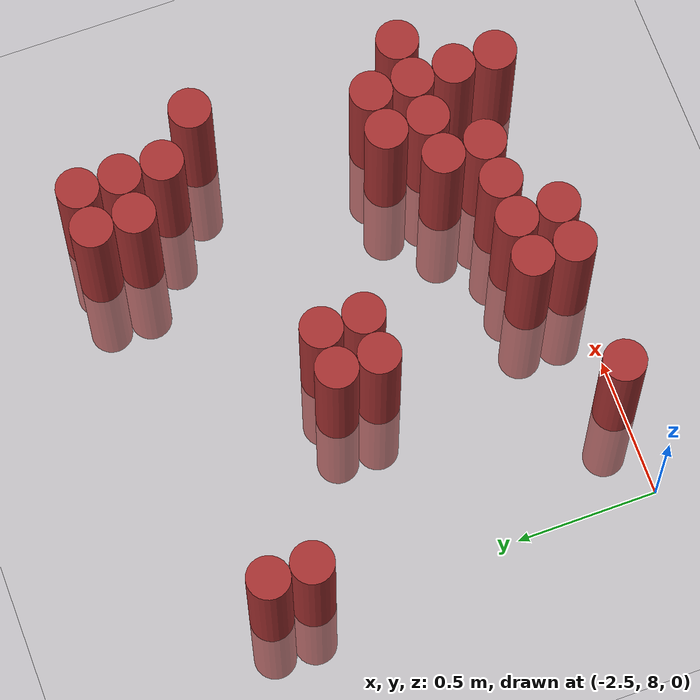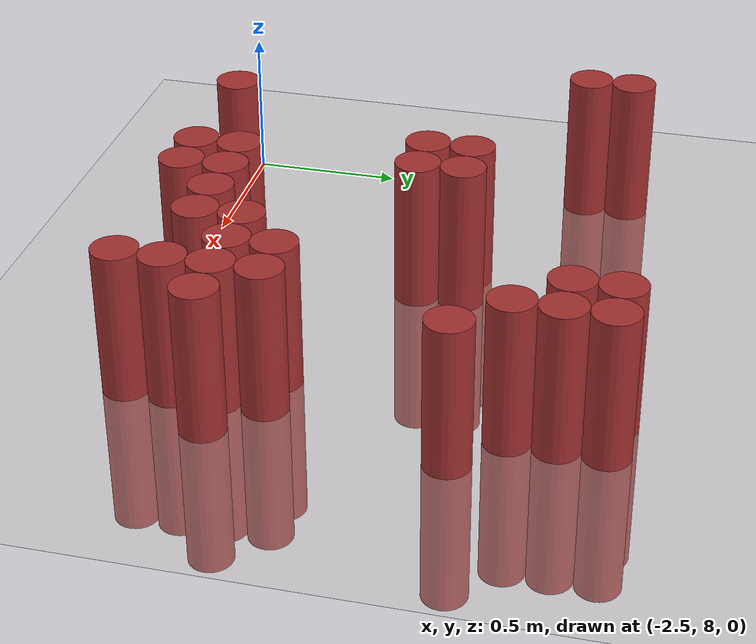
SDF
<sdf version="1.6">
 <world name="default">
  <model name="ground_plane">
   <static>1</static>
   <link name="link">
    <collision name="collision">
     <geometry><plane><normal>0 0 1</normal><size>100 100</size></plane></geometry>
     <surface><friction><ode><mu>100</mu><mu2>50</mu2></ode></friction></surface>
    </collision>
    <visual name="visual">
     <cast_shadows>0</cast_shadows>
     <geometry><plane><normal>0 0 1</normal><size>100 100</size></plane></geometry>
     <material>
      <script><uri>file://media/materials/scripts/gazebo.material</uri><name>Gazebo/Grey</name></script>
     </material>
    </visual>
   </link>
  </model>
  <model name="unit_cylinder_176">
   <static>1</static>
   <pose>-2.475000 9.225000 0.000000 0.000000 0.000000 0.000000</pose>
   <link name="link">
    <inertial>
     <mass>1</mass>
     <inertia><ixx>0.145833</ixx><ixy>0</ixy><ixz>0</ixz><iyy>0.145833</iyy><iyz>0</iyz><izz>0.125</izz></inertia>
    </inertial>
    <collision name="collision">
     <geometry><cylinder><radius>0.075000</radius><length>1</length></cylinder></geometry>
    </collision>
    <visual name="visual">
     <geometry><cylinder><radius>0.075000</radius><length>1</length></cylinder></geometry>
     <material>
      <ambient>0.648000 0.192000 0.192000 1</ambient>
      <diffuse>0.648000 0.192000 0.192000 1</diffuse>
     </material>
     <material>
      <script><name>Gazebo/Grey</name><uri>file://media/materials/scripts/gazebo.material</uri></script>
     </material>
    </visual>
   </link>
  </model>
  <model name="unit_cylinder_177">
   <static>1</static>
   <pose>-2.475000 9.375000 0.000000 0.000000 0.000000 0.000000</pose>
   <link name="link">
    <inertial>
     <mass>1</mass>
     <inertia><ixx>0.145833</ixx><ixy>0</ixy><ixz>0</ixz><iyy>0.145833</iyy><iyz>0</iyz><izz>0.125</izz></inertia>
    </inertial>
    <collision name="collision">
     <geometry><cylinder><radius>0.075000</radius><length>1</length></cylinder></geometry>
    </collision>
    <visual name="visual">
     <geometry><cylinder><radius>0.075000</radius><length>1</length></cylinder></geometry>
     <material>
      <ambient>0.648000 0.192000 0.192000 1</ambient>
      <diffuse>0.648000 0.192000 0.192000 1</diffuse>
     </material>
     <material>
      <script><name>Gazebo/Grey</name><uri>file://media/materials/scripts/gazebo.material</uri></script>
     </material>
    </visual>
   </link>
  </model>
  <model name="unit_cylinder_188">
   <static>1</static>
   <pose>-2.175000 8.025000 0.000000 0.000000 0.000000 0.000000</pose>
   <link name="link">
    <inertial>
     <mass>1</mass>
     <inertia><ixx>0.145833</ixx><ixy>0</ixy><ixz>0</ixz><iyy>0.145833</iyy><iyz>0</iyz><izz>0.125</izz></inertia>
    </inertial>
    <collision name="collision">
     <geometry><cylinder><radius>0.075000</radius><length>1</length></cylinder></geometry>
    </collision>
    <visual name="visual">
     <geometry><cylinder><radius>0.075000</radius><length>1</length></cylinder></geometry>
     <material>
      <ambient>0.648000 0.192000 0.192000 1</ambient>
      <diffuse>0.648000 0.192000 0.192000 1</diffuse>
     </material>
     <material>
      <script><name>Gazebo/Grey</name><uri>file://media/materials/scripts/gazebo.material</uri></script>
     </material>
    </visual>
   </link>
  </model>
  <model name="unit_cylinder_198">
   <static>1</static>
   <pose>-1.875000 8.775000 0.000000 0.000000 0.000000 0.000000</pose>
   <link name="link">
    <inertial>
     <mass>1</mass>
     <inertia><ixx>0.145833</ixx><ixy>0</ixy><ixz>0</ixz><iyy>0.145833</iyy><iyz>0</iyz><izz>0.125</izz></inertia>
    </inertial>
    <collision name="collision">
     <geometry><cylinder><radius>0.075000</radius><length>1</length></cylinder></geometry>
    </collision>
    <visual name="visual">
     <geometry><cylinder><radius>0.075000</radius><length>1</length></cylinder></geometry>
     <material>
      <ambient>0.648000 0.192000 0.192000 1</ambient>
      <diffuse>0.648000 0.192000 0.192000 1</diffuse>
     </material>
     <material>
      <script><name>Gazebo/Grey</name><uri>file://media/materials/scripts/gazebo.material</uri></script>
     </material>
    </visual>
   </link>
  </model>
  <model name="unit_cylinder_199">
   <static>1</static>
   <pose>-1.875000 8.925000 0.000000 0.000000 0.000000 0.000000</pose>
   <link name="link">
    <inertial>
     <mass>1</mass>
     <inertia><ixx>0.145833</ixx><ixy>0</ixy><ixz>0</ixz><iyy>0.145833</iyy><iyz>0</iyz><izz>0.125</izz></inertia>
    </inertial>
    <collision name="collision">
     <geometry><cylinder><radius>0.075000</radius><length>1</length></cylinder></geometry>
    </collision>
    <visual name="visual">
     <geometry><cylinder><radius>0.075000</radius><length>1</length></cylinder></geometry>
     <material>
      <ambient>0.648000 0.192000 0.192000 1</ambient>
      <diffuse>0.648000 0.192000 0.192000 1</diffuse>
     </material>
     <material>
      <script><name>Gazebo/Grey</name><uri>file://media/materials/scripts/gazebo.material</uri></script>
     </material>
    </visual>
   </link>
  </model>
  <model name="unit_cylinder_208">
   <static>1</static>
   <pose>-1.725000 8.025000 0.000000 0.000000 0.000000 0.000000</pose>
   <link name="link">
    <inertial>
     <mass>1</mass>
     <inertia><ixx>0.145833</ixx><ixy>0</ixy><ixz>0</ixz><iyy>0.145833</iyy><iyz>0</iyz><izz>0.125</izz></inertia>
    </inertial>
    <collision name="collision">
     <geometry><cylinder><radius>0.075000</radius><length>1</length></cylinder></geometry>
    </collision>
    <visual name="visual">
     <geometry><cylinder><radius>0.075000</radius><length>1</length></cylinder></geometry>
     <material>
      <ambient>0.648000 0.192000 0.192000 1</ambient>
      <diffuse>0.648000 0.192000 0.192000 1</diffuse>
     </material>
     <material>
      <script><name>Gazebo/Grey</name><uri>file://media/materials/scripts/gazebo.material</uri></script>
     </material>
    </visual>
   </link>
  </model>
  <model name="unit_cylinder_209">
   <static>1</static>
   <pose>-1.725000 8.175000 0.000000 0.000000 0.000000 0.000000</pose>
   <link name="link">
    <inertial>
     <mass>1</mass>
     <inertia><ixx>0.145833</ixx><ixy>0</ixy><ixz>0</ixz><iyy>0.145833</iyy><iyz>0</iyz><izz>0.125</izz></inertia>
    </inertial>
    <collision name="collision">
     <geometry><cylinder><radius>0.075000</radius><length>1</length></cylinder></geometry>
    </collision>
    <visual name="visual">
     <geometry><cylinder><radius>0.075000</radius><length>1</length></cylinder></geometry>
     <material>
      <ambient>0.648000 0.192000 0.192000 1</ambient>
      <diffuse>0.648000 0.192000 0.192000 1</diffuse>
     </material>
     <material>
      <script><name>Gazebo/Grey</name><uri>file://media/materials/scripts/gazebo.material</uri></script>
     </material>
    </visual>
   </link>
  </model>
  <model name="unit_cylinder_210">
   <static>1</static>
   <pose>-1.725000 8.775000 0.000000 0.000000 0.000000 0.000000</pose>
   <link name="link">
    <inertial>
     <mass>1</mass>
     <inertia><ixx>0.145833</ixx><ixy>0</ixy><ixz>0</ixz><iyy>0.145833</iyy><iyz>0</iyz><izz>0.125</izz></inertia>
    </inertial>
    <collision name="collision">
     <geometry><cylinder><radius>0.075000</radius><length>1</length></cylinder></geometry>
    </collision>
    <visual name="visual">
     <geometry><cylinder><radius>0.075000</radius><length>1</length></cylinder></geometry>
     <material>
      <ambient>0.648000 0.192000 0.192000 1</ambient>
      <diffuse>0.648000 0.192000 0.192000 1</diffuse>
     </material>
     <material>
      <script><name>Gazebo/Grey</name><uri>file://media/materials/scripts/gazebo.material</uri></script>
     </material>
    </visual>
   </link>
  </model>
  <model name="unit_cylinder_211">
   <static>1</static>
   <pose>-1.725000 8.925000 0.000000 0.000000 0.000000 0.000000</pose>
   <link name="link">
    <inertial>
     <mass>1</mass>
     <inertia><ixx>0.145833</ixx><ixy>0</ixy><ixz>0</ixz><iyy>0.145833</iyy><iyz>0</iyz><izz>0.125</izz></inertia>
    </inertial>
    <collision name="collision">
     <geometry><cylinder><radius>0.075000</radius><length>1</length></cylinder></geometry>
    </collision>
    <visual name="visual">
     <geometry><cylinder><radius>0.075000</radius><length>1</length></cylinder></geometry>
     <material>
      <ambient>0.648000 0.192000 0.192000 1</ambient>
      <diffuse>0.648000 0.192000 0.192000 1</diffuse>
     </material>
     <material>
      <script><name>Gazebo/Grey</name><uri>file://media/materials/scripts/gazebo.material</uri></script>
     </material>
    </visual>
   </link>
  </model>
  <model name="unit_cylinder_221">
   <static>1</static>
   <pose>-1.575000 8.025000 0.000000 0.000000 0.000000 0.000000</pose>
   <link name="link">
    <inertial>
     <mass>1</mass>
     <inertia><ixx>0.145833</ixx><ixy>0</ixy><ixz>0</ixz><iyy>0.145833</iyy><iyz>0</iyz><izz>0.125</izz></inertia>
    </inertial>
    <collision name="collision">
     <geometry><cylinder><radius>0.075000</radius><length>1</length></cylinder></geometry>
    </collision>
    <visual name="visual">
     <geometry><cylinder><radius>0.075000</radius><length>1</length></cylinder></geometry>
     <material>
      <ambient>0.648000 0.192000 0.192000 1</ambient>
      <diffuse>0.648000 0.192000 0.192000 1</diffuse>
     </material>
     <material>
      <script><name>Gazebo/Grey</name><uri>file://media/materials/scripts/gazebo.material</uri></script>
     </material>
    </visual>
   </link>
  </model>
  <model name="unit_cylinder_222">
   <static>1</static>
   <pose>-1.575000 8.175000 0.000000 0.000000 0.000000 0.000000</pose>
   <link name="link">
    <inertial>
     <mass>1</mass>
     <inertia><ixx>0.145833</ixx><ixy>0</ixy><ixz>0</ixz><iyy>0.145833</iyy><iyz>0</iyz><izz>0.125</izz></inertia>
    </inertial>
    <collision name="collision">
     <geometry><cylinder><radius>0.075000</radius><length>1</length></cylinder></geometry>
    </collision>
    <visual name="visual">
     <geometry><cylinder><radius>0.075000</radius><length>1</length></cylinder></geometry>
     <material>
      <ambient>0.648000 0.192000 0.192000 1</ambient>
      <diffuse>0.648000 0.192000 0.192000 1</diffuse>
     </material>
     <material>
      <script><name>Gazebo/Grey</name><uri>file://media/materials/scripts/gazebo.material</uri></script>
     </material>
    </visual>
   </link>
  </model>
  <model name="unit_cylinder_227">
   <static>1</static>
   <pose>-1.425000 8.175000 0.000000 0.000000 0.000000 0.000000</pose>
   <link name="link">
    <inertial>
     <mass>1</mass>
     <inertia><ixx>0.145833</ixx><ixy>0</ixy><ixz>0</ixz><iyy>0.145833</iyy><iyz>0</iyz><izz>0.125</izz></inertia>
    </inertial>
    <collision name="collision">
     <geometry><cylinder><radius>0.075000</radius><length>1</length></cylinder></geometry>
    </collision>
    <visual name="visual">
     <geometry><cylinder><radius>0.075000</radius><length>1</length></cylinder></geometry>
     <material>
      <ambient>0.648000 0.192000 0.192000 1</ambient>
      <diffuse>0.648000 0.192000 0.192000 1</diffuse>
     </material>
     <material>
      <script><name>Gazebo/Grey</name><uri>file://media/materials/scripts/gazebo.material</uri></script>
     </material>
    </visual>
   </link>
  </model>
  <model name="unit_cylinder_231">
   <static>1</static>
   <pose>-1.275000 8.175000 0.000000 0.000000 0.000000 0.000000</pose>
   <link name="link">
    <inertial>
     <mass>1</mass>
     <inertia><ixx>0.145833</ixx><ixy>0</ixy><ixz>0</ixz><iyy>0.145833</iyy><iyz>0</iyz><izz>0.125</izz></inertia>
    </inertial>
    <collision name="collision">
     <geometry><cylinder><radius>0.075000</radius><length>1</length></cylinder></geometry>
    </collision>
    <visual name="visual">
     <geometry><cylinder><radius>0.075000</radius><length>1</length></cylinder></geometry>
     <material>
      <ambient>0.648000 0.192000 0.192000 1</ambient>
      <diffuse>0.648000 0.192000 0.192000 1</diffuse>
     </material>
     <material>
      <script><name>Gazebo/Grey</name><uri>file://media/materials/scripts/gazebo.material</uri></script>
     </material>
    </visual>
   </link>
  </model>
  <model name="unit_cylinder_232">
   <static>1</static>
   <pose>-1.275000 8.325000 0.000000 0.000000 0.000000 0.000000</pose>
   <link name="link">
    <inertial>
     <mass>1</mass>
     <inertia><ixx>0.145833</ixx><ixy>0</ixy><ixz>0</ixz><iyy>0.145833</iyy><iyz>0</iyz><izz>0.125</izz></inertia>
    </inertial>
    <collision name="collision">
     <geometry><cylinder><radius>0.075000</radius><length>1</length></cylinder></geometry>
    </collision>
    <visual name="visual">
     <geometry><cylinder><radius>0.075000</radius><length>1</length></cylinder></geometry>
     <material>
      <ambient>0.648000 0.192000 0.192000 1</ambient>
      <diffuse>0.648000 0.192000 0.192000 1</diffuse>
     </material>
     <material>
      <script><name>Gazebo/Grey</name><uri>file://media/materials/scripts/gazebo.material</uri></script>
     </material>
    </visual>
   </link>
  </model>
  <model name="unit_cylinder_238">
   <static>1</static>
   <pose>-1.125000 8.325000 0.000000 0.000000 0.000000 0.000000</pose>
   <link name="link">
    <inertial>
     <mass>1</mass>
     <inertia><ixx>0.145833</ixx><ixy>0</ixy><ixz>0</ixz><iyy>0.145833</iyy><iyz>0</iyz><izz>0.125</izz></inertia>
    </inertial>
    <collision name="collision">
     <geometry><cylinder><radius>0.075000</radius><length>1</length></cylinder></geometry>
    </collision>
    <visual name="visual">
     <geometry><cylinder><radius>0.075000</radius><length>1</length></cylinder></geometry>
     <material>
      <ambient>0.648000 0.192000 0.192000 1</ambient>
      <diffuse>0.648000 0.192000 0.192000 1</diffuse>
     </material>
     <material>
      <script><name>Gazebo/Grey</name><uri>file://media/materials/scripts/gazebo.material</uri></script>
     </material>
    </visual>
   </link>
  </model>
  <model name="unit_cylinder_239">
   <static>1</static>
   <pose>-1.125000 8.475000 0.000000 0.000000 0.000000 0.000000</pose>
   <link name="link">
    <inertial>
     <mass>1</mass>
     <inertia><ixx>0.145833</ixx><ixy>0</ixy><ixz>0</ixz><iyy>0.145833</iyy><iyz>0</iyz><izz>0.125</izz></inertia>
    </inertial>
    <collision name="collision">
     <geometry><cylinder><radius>0.075000</radius><length>1</length></cylinder></geometry>
    </collision>
    <visual name="visual">
     <geometry><cylinder><radius>0.075000</radius><length>1</length></cylinder></geometry>
     <material>
      <ambient>0.648000 0.192000 0.192000 1</ambient>
      <diffuse>0.648000 0.192000 0.192000 1</diffuse>
     </material>
     <material>
      <script><name>Gazebo/Grey</name><uri>file://media/materials/scripts/gazebo.material</uri></script>
     </material>
    </visual>
   </link>
  </model>
  <model name="unit_cylinder_240">
   <static>1</static>
   <pose>-1.125000 9.375000 0.000000 0.000000 0.000000 0.000000</pose>
   <link name="link">
    <inertial>
     <mass>1</mass>
     <inertia><ixx>0.145833</ixx><ixy>0</ixy><ixz>0</ixz><iyy>0.145833</iyy><iyz>0</iyz><izz>0.125</izz></inertia>
    </inertial>
    <collision name="collision">
     <geometry><cylinder><radius>0.075000</radius><length>1</length></cylinder></geometry>
    </collision>
    <visual name="visual">
     <geometry><cylinder><radius>0.075000</radius><length>1</length></cylinder></geometry>
     <material>
      <ambient>0.648000 0.192000 0.192000 1</ambient>
      <diffuse>0.648000 0.192000 0.192000 1</diffuse>
     </material>
     <material>
      <script><name>Gazebo/Grey</name><uri>file://media/materials/scripts/gazebo.material</uri></script>
     </material>
    </visual>
   </link>
  </model>
  <model name="unit_cylinder_241">
   <static>1</static>
   <pose>-1.125000 9.525000 0.000000 0.000000 0.000000 0.000000</pose>
   <link name="link">
    <inertial>
     <mass>1</mass>
     <inertia><ixx>0.145833</ixx><ixy>0</ixy><ixz>0</ixz><iyy>0.145833</iyy><iyz>0</iyz><izz>0.125</izz></inertia>
    </inertial>
    <collision name="collision">
     <geometry><cylinder><radius>0.075000</radius><length>1</length></cylinder></geometry>
    </collision>
    <visual name="visual">
     <geometry><cylinder><radius>0.075000</radius><length>1</length></cylinder></geometry>
     <material>
      <ambient>0.648000 0.192000 0.192000 1</ambient>
      <diffuse>0.648000 0.192000 0.192000 1</diffuse>
     </material>
     <material>
      <script><name>Gazebo/Grey</name><uri>file://media/materials/scripts/gazebo.material</uri></script>
     </material>
    </visual>
   </link>
  </model>
  <model name="unit_cylinder_246">
   <static>1</static>
   <pose>-0.975000 8.025000 0.000000 0.000000 0.000000 0.000000</pose>
   <link name="link">
    <inertial>
     <mass>1</mass>
     <inertia><ixx>0.145833</ixx><ixy>0</ixy><ixz>0</ixz><iyy>0.145833</iyy><iyz>0</iyz><izz>0.125</izz></inertia>
    </inertial>
    <collision name="collision">
     <geometry><cylinder><radius>0.075000</radius><length>1</length></cylinder></geometry>
    </collision>
    <visual name="visual">
     <geometry><cylinder><radius>0.075000</radius><length>1</length></cylinder></geometry>
     <material>
      <ambient>0.648000 0.192000 0.192000 1</ambient>
      <diffuse>0.648000 0.192000 0.192000 1</diffuse>
     </material>
     <material>
      <script><name>Gazebo/Grey</name><uri>file://media/materials/scripts/gazebo.material</uri></script>
     </material>
    </visual>
   </link>
  </model>
  <model name="unit_cylinder_247">
   <static>1</static>
   <pose>-0.975000 8.175000 0.000000 0.000000 0.000000 0.000000</pose>
   <link name="link">
    <inertial>
     <mass>1</mass>
     <inertia><ixx>0.145833</ixx><ixy>0</ixy><ixz>0</ixz><iyy>0.145833</iyy><iyz>0</iyz><izz>0.125</izz></inertia>
    </inertial>
    <collision name="collision">
     <geometry><cylinder><radius>0.075000</radius><length>1</length></cylinder></geometry>
    </collision>
    <visual name="visual">
     <geometry><cylinder><radius>0.075000</radius><length>1</length></cylinder></geometry>
     <material>
      <ambient>0.648000 0.192000 0.192000 1</ambient>
      <diffuse>0.648000 0.192000 0.192000 1</diffuse>
     </material>
     <material>
      <script><name>Gazebo/Grey</name><uri>file://media/materials/scripts/gazebo.material</uri></script>
     </material>
    </visual>
   </link>
  </model>
  <model name="unit_cylinder_248">
   <static>1</static>
   <pose>-0.975000 8.325000 0.000000 0.000000 0.000000 0.000000</pose>
   <link name="link">
    <inertial>
     <mass>1</mass>
     <inertia><ixx>0.145833</ixx><ixy>0</ixy><ixz>0</ixz><iyy>0.145833</iyy><iyz>0</iyz><izz>0.125</izz></inertia>
    </inertial>
    <collision name="collision">
     <geometry><cylinder><radius>0.075000</radius><length>1</length></cylinder></geometry>
    </collision>
    <visual name="visual">
     <geometry><cylinder><radius>0.075000</radius><length>1</length></cylinder></geometry>
     <material>
      <ambient>0.648000 0.192000 0.192000 1</ambient>
      <diffuse>0.648000 0.192000 0.192000 1</diffuse>
     </material>
     <material>
      <script><name>Gazebo/Grey</name><uri>file://media/materials/scripts/gazebo.material</uri></script>
     </material>
    </visual>
   </link>
  </model>
  <model name="unit_cylinder_249">
   <static>1</static>
   <pose>-0.975000 8.475000 0.000000 0.000000 0.000000 0.000000</pose>
   <link name="link">
    <inertial>
     <mass>1</mass>
     <inertia><ixx>0.145833</ixx><ixy>0</ixy><ixz>0</ixz><iyy>0.145833</iyy><iyz>0</iyz><izz>0.125</izz></inertia>
    </inertial>
    <collision name="collision">
     <geometry><cylinder><radius>0.075000</radius><length>1</length></cylinder></geometry>
    </collision>
    <visual name="visual">
     <geometry><cylinder><radius>0.075000</radius><length>1</length></cylinder></geometry>
     <material>
      <ambient>0.648000 0.192000 0.192000 1</ambient>
      <diffuse>0.648000 0.192000 0.192000 1</diffuse>
     </material>
     <material>
      <script><name>Gazebo/Grey</name><uri>file://media/materials/scripts/gazebo.material</uri></script>
     </material>
    </visual>
   </link>
  </model>
  <model name="unit_cylinder_250">
   <static>1</static>
   <pose>-0.975000 9.225000 0.000000 0.000000 0.000000 0.000000</pose>
   <link name="link">
    <inertial>
     <mass>1</mass>
     <inertia><ixx>0.145833</ixx><ixy>0</ixy><ixz>0</ixz><iyy>0.145833</iyy><iyz>0</iyz><izz>0.125</izz></inertia>
    </inertial>
    <collision name="collision">
     <geometry><cylinder><radius>0.075000</radius><length>1</length></cylinder></geometry>
    </collision>
    <visual name="visual">
     <geometry><cylinder><radius>0.075000</radius><length>1</length></cylinder></geometry>
     <material>
      <ambient>0.648000 0.192000 0.192000 1</ambient>
      <diffuse>0.648000 0.192000 0.192000 1</diffuse>
     </material>
     <material>
      <script><name>Gazebo/Grey</name><uri>file://media/materials/scripts/gazebo.material</uri></script>
     </material>
    </visual>
   </link>
  </model>
  <model name="unit_cylinder_251">
   <static>1</static>
   <pose>-0.975000 9.375000 0.000000 0.000000 0.000000 0.000000</pose>
   <link name="link">
    <inertial>
     <mass>1</mass>
     <inertia><ixx>0.145833</ixx><ixy>0</ixy><ixz>0</ixz><iyy>0.145833</iyy><iyz>0</iyz><izz>0.125</izz></inertia>
    </inertial>
    <collision name="collision">
     <geometry><cylinder><radius>0.075000</radius><length>1</length></cylinder></geometry>
    </collision>
    <visual name="visual">
     <geometry><cylinder><radius>0.075000</radius><length>1</length></cylinder></geometry>
     <material>
      <ambient>0.648000 0.192000 0.192000 1</ambient>
      <diffuse>0.648000 0.192000 0.192000 1</diffuse>
     </material>
     <material>
      <script><name>Gazebo/Grey</name><uri>file://media/materials/scripts/gazebo.material</uri></script>
     </material>
    </visual>
   </link>
  </model>
  <model name="unit_cylinder_252">
   <static>1</static>
   <pose>-0.975000 9.525000 0.000000 0.000000 0.000000 0.000000</pose>
   <link name="link">
    <inertial>
     <mass>1</mass>
     <inertia><ixx>0.145833</ixx><ixy>0</ixy><ixz>0</ixz><iyy>0.145833</iyy><iyz>0</iyz><izz>0.125</izz></inertia>
    </inertial>
    <collision name="collision">
     <geometry><cylinder><radius>0.075000</radius><length>1</length></cylinder></geometry>
    </collision>
    <visual name="visual">
     <geometry><cylinder><radius>0.075000</radius><length>1</length></cylinder></geometry>
     <material>
      <ambient>0.648000 0.192000 0.192000 1</ambient>
      <diffuse>0.648000 0.192000 0.192000 1</diffuse>
     </material>
     <material>
      <script><name>Gazebo/Grey</name><uri>file://media/materials/scripts/gazebo.material</uri></script>
     </material>
    </visual>
   </link>
  </model>
  <model name="unit_cylinder_256">
   <static>1</static>
   <pose>-0.825000 8.325000 0.000000 0.000000 0.000000 0.000000</pose>
   <link name="link">
    <inertial>
     <mass>1</mass>
     <inertia><ixx>0.145833</ixx><ixy>0</ixy><ixz>0</ixz><iyy>0.145833</iyy><iyz>0</iyz><izz>0.125</izz></inertia>
    </inertial>
    <collision name="collision">
     <geometry><cylinder><radius>0.075000</radius><length>1</length></cylinder></geometry>
    </collision>
    <visual name="visual">
     <geometry><cylinder><radius>0.075000</radius><length>1</length></cylinder></geometry>
     <material>
      <ambient>0.648000 0.192000 0.192000 1</ambient>
      <diffuse>0.648000 0.192000 0.192000 1</diffuse>
     </material>
     <material>
      <script><name>Gazebo/Grey</name><uri>file://media/materials/scripts/gazebo.material</uri></script>
     </material>
    </visual>
   </link>
  </model>
  <model name="unit_cylinder_257">
   <static>1</static>
   <pose>-0.825000 9.075000 0.000000 0.000000 0.000000 0.000000</pose>
   <link name="link">
    <inertial>
     <mass>1</mass>
     <inertia><ixx>0.145833</ixx><ixy>0</ixy><ixz>0</ixz><iyy>0.145833</iyy><iyz>0</iyz><izz>0.125</izz></inertia>
    </inertial>
    <collision name="collision">
     <geometry><cylinder><radius>0.075000</radius><length>1</length></cylinder></geometry>
    </collision>
    <visual name="visual">
     <geometry><cylinder><radius>0.075000</radius><length>1</length></cylinder></geometry>
     <material>
      <ambient>0.648000 0.192000 0.192000 1</ambient>
      <diffuse>0.648000 0.192000 0.192000 1</diffuse>
     </material>
     <material>
      <script><name>Gazebo/Grey</name><uri>file://media/materials/scripts/gazebo.material</uri></script>
     </material>
    </visual>
   </link>
  </model>
 </world>
</sdf>
